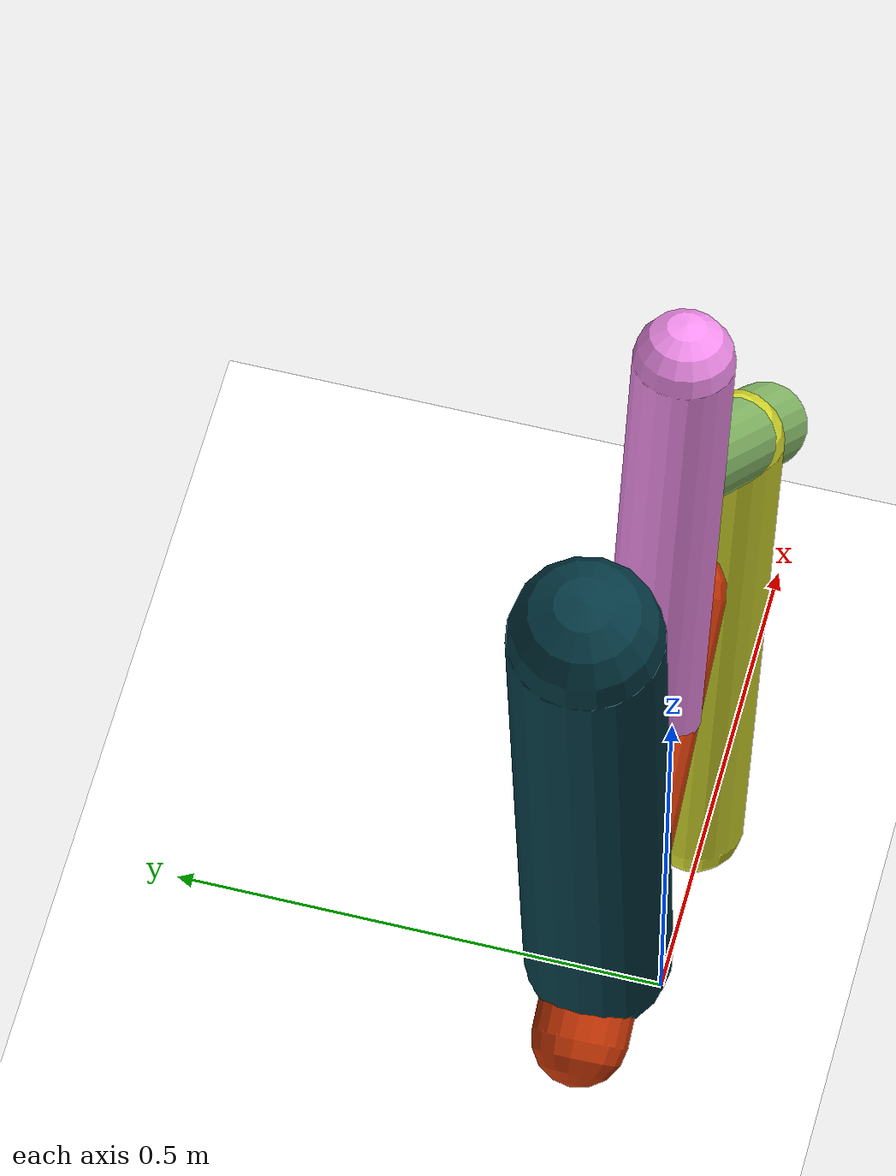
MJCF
<mujoco model="morphology">
  <option timestep="0.01"/>
  <default>
    <default class="/"/>
    <default class="0/"/>
    <default class="0/1/"/>
    <default class="0/1/2/"/>
    <default class="0/1/2/3/"/>
    <default class="0/4/"/>
  </default>
  <asset>
    <texture name="texplane" type="2d" builtin="checker" rgb1="0.10000000000000001 0.20000000000000001 0.29999999999999999" rgb2="0.20000000000000001 0.29999999999999999 0.40000000000000002" width="300" height="300"/>
    <material name="MatPlane" class="/" texture="texplane" texrepeat="20 20" specular="1" shininess="1" reflectance="0.5"/>
  </asset>
  <worldbody>
    <light name="//unnamed_light_0" class="/" directional="true" pos="0 0 1.5" dir="0 0 -1.3" cutoff="100" exponent="1" diffuse="1 1 1" specular="0.10000000000000001 0.10000000000000001 0.10000000000000001"/>
    <geom name="ground" class="/" type="plane" size="15 15 0.5" material="MatPlane" rgba="1 1 1 1"/>
    <site name="body" class="/" size="9.9999999999999995e-07 9.9999999999999995e-07 9.9999999999999995e-07" pos="0 0 0.74147108793258665"/>
    <body pos="0 0 0.74147108793258665" name="0/">
      <joint name="0/rootx/" class="/" type="slide" axis="1 0 0" limited="false" stiffness="0" armature="0" damping="0"/>
      <joint name="0/rootz/" class="/" type="slide" axis="0 0 1" limited="false" stiffness="0" armature="0" damping="0"/>
      <joint name="0/rooty/" class="/" type="hinge" axis="0 1 0" limited="false" stiffness="0" armature="0" damping="0"/>
      <geom name="0/geom" class="0/" type="capsule" contype="1" conaffinity="1" condim="3" size="0.045692145530442381" rgba="0.80118887263546812 0.21770464683878477 0.025468770443005218 1" friction="0.59999999999999998 0.10000000000000001 0.10000000000000001" fromto="0 0 0 -0.36149988285747764 0 -0.22127362780862114"/>
      <site name="0/end0" class="0/" size="0.0050000000000000001" pos="-0.36149988285747764 0 -0.22127362780862114"/>
      <site name="0/attach1" class="0/" size="9.9999999999999995e-07 9.9999999999999995e-07 9.9999999999999995e-07" pos="-0.09768955248388532 0 -0.059795653338101412"/>
      <body pos="-0.09768955248388532 0 -0.059795653338101412" name="0/1/">
        <joint name="0/1/joint/" class="0/" type="hinge" axis="0 1 0" limited="true" range="-60.266415872307455 60.266415872307455"/>
        <geom name="0/1/geom" class="0/1/" type="capsule" contype="1" conaffinity="1" condim="3" size="0.046742332891378295" rgba="0.96766531629379404 0.56658800815810884 0.94144593949100441 1" friction="0.59999999999999998 0.10000000000000001 0.10000000000000001" fromto="0 0 0 0.082400573439687985 0 0.46769058098521965"/>
        <site name="0/1/end1" class="0/1/" size="0.0050000000000000001" pos="0.082400573439687985 0 0.46769058098521965"/>
        <site name="0/1/attach2" class="0/1/" size="9.9999999999999995e-07 9.9999999999999995e-07 9.9999999999999995e-07" pos="0.057672517432945533 0 0.32733865869073059"/>
        <body pos="0.057672517432945533 0 0.32733865869073059" name="0/1/2/">
          <geom name="0/1/2/geom" class="0/1/2/" type="capsule" contype="1" conaffinity="1" condim="3" size="0.042335273462376116" rgba="0.61175988683607796 0.84256271881122857 0.47524990699780922 1" friction="0.59999999999999998 0.10000000000000001 0.10000000000000001" fromto="0 0 0 0.42004792789898659 0 -0.55037569499829242"/>
          <site name="0/1/2/end2" class="0/1/2/" size="0.0050000000000000001" pos="0.42004792789898659 0 -0.55037569499829242"/>
          <site name="0/1/2/attach3" class="0/1/2/" size="9.9999999999999995e-07 9.9999999999999995e-07 9.9999999999999995e-07" pos="0.27309998293152804 0 -0.3578343872847472"/>
          <body pos="0.27309998293152804 0 -0.3578343872847472" name="0/1/2/3/">
            <joint name="0/1/2/3/joint/" class="0/1/2/" type="hinge" axis="0 1 0" limited="true" range="-62.016315352205787 62.016315352205787"/>
            <geom name="0/1/2/3/geom" class="0/1/2/3/" type="capsule" contype="1" conaffinity="1" condim="3" size="0.048052858191204667" rgba="0.84154134356312948 0.86186671171498919 0.17101512317207446 1" friction="0.59999999999999998 0.10000000000000001 0.10000000000000001" fromto="0 0 0 -0.10054118683701163 0 -0.55117970374017156"/>
            <site name="0/1/2/3/end3" class="0/1/2/3/" size="0.0050000000000000001" pos="-0.10054118683701163 0 -0.55117970374017156"/>
          </body>
        </body>
      </body>
      <site name="0/attach4" class="0/" size="9.9999999999999995e-07 9.9999999999999995e-07 9.9999999999999995e-07" pos="-0.29332853977716083 0 -0.17954603366188956"/>
      <body pos="-0.29332853977716083 0 -0.17954603366188956" name="0/4/">
        <joint name="0/4/joint/" class="0/" type="hinge" axis="0 1 0" limited="true" range="-32.36295307064313 32.36295307064313"/>
        <geom name="0/4/geom" class="0/4/" type="capsule" contype="1" conaffinity="1" condim="3" size="0.06938053017771055" rgba="0.019094649759638593 0.22300787008783396 0.26714775044000794 1" friction="0.59999999999999998 0.10000000000000001 0.10000000000000001" fromto="0 0 0 -0.086616190005782023 0 0.69379787293749806"/>
        <site name="0/4/end4" class="0/4/" size="0.0050000000000000001" pos="-0.086616190005782023 0 0.69379787293749806"/>
      </body>
      <camera name="0/side" class="0/" mode="trackcom" pos="0.40000000000000002 -4 0.20000000000000001" quat="0.70699999999999996 0.70699999999999996 0 0"/>
    </body>
  </worldbody>
  <actuator>
    <motor name="0/1/motor" class="0/1/" ctrllimited="true" ctrlrange="-1 1" gear="79" joint="0/1/joint/"/>
    <motor name="0/1/2/3/motor" class="0/1/2/3/" ctrllimited="true" ctrlrange="-1 1" gear="66" joint="0/1/2/3/joint/"/>
    <motor name="0/4/motor" class="0/4/" ctrllimited="true" ctrlrange="-1 1" gear="71" joint="0/4/joint/"/>
  </actuator>
  <sensor>
    <subtreelinvel name="velocity" body="0/"/>
  </sensor>
</mujoco>
